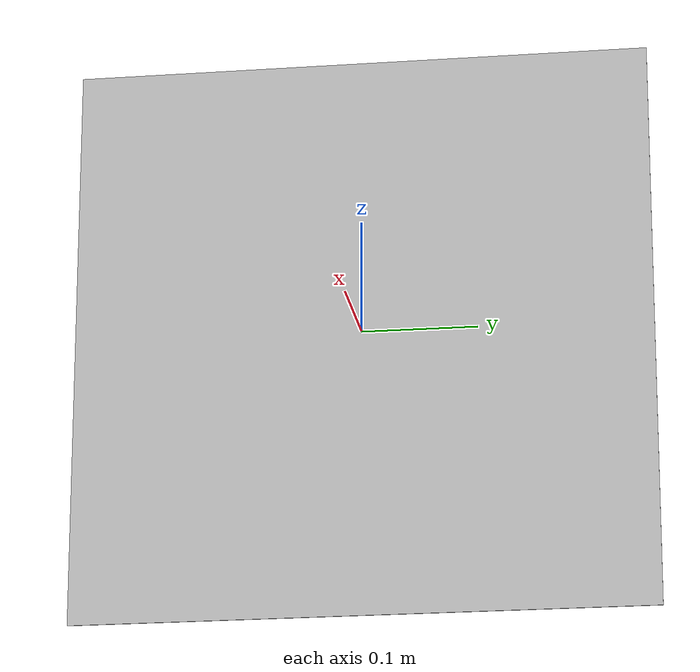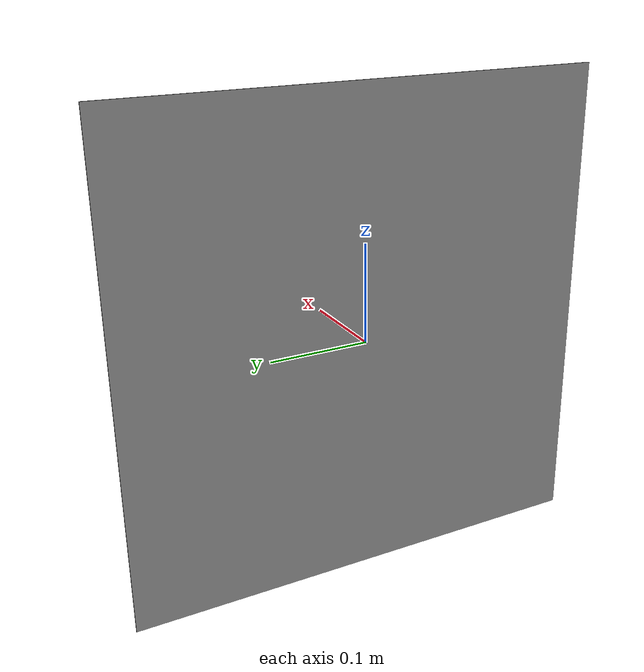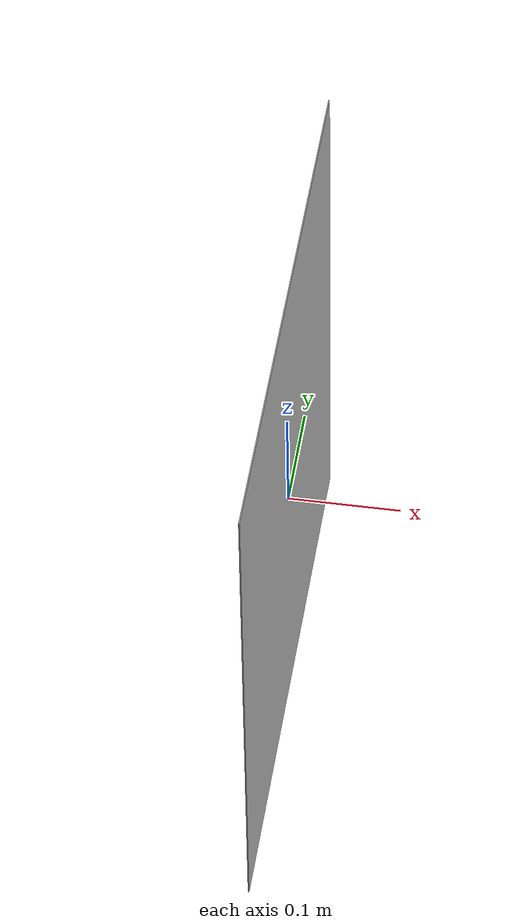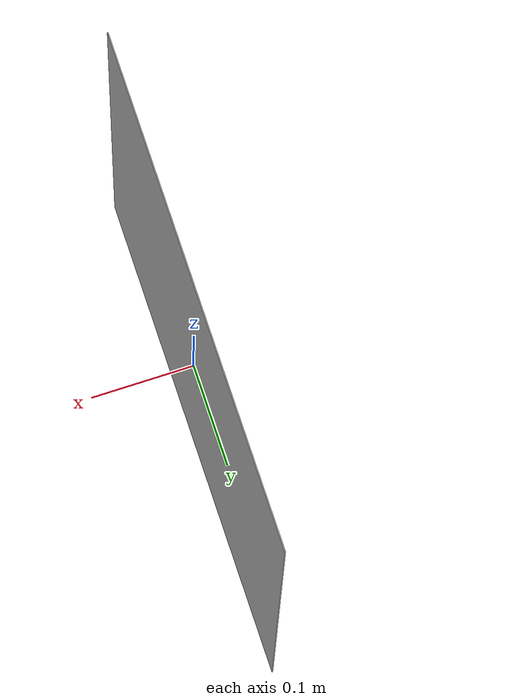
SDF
<?xml version='1.0'?>
<sdf version='1.6'>
  <model name='apriltag1'>
    <link name='link'>
      <pose frame=''>0 0 0 0 0 0</pose>
      <inertial>
        <mass>0.0001</mass>
        <inertia>
          <ixx>0.166667</ixx>
          <ixy>0</ixy>
          <ixz>0</ixz>
          <iyy>0.166667</iyy>
          <iyz>0</iyz>
          <izz>0.166667</izz>
        </inertia>
        <pose frame=''>0 0 0 0 -0 0</pose>
      </inertial>
      <self_collide>0</self_collide>
      <kinematic>0</kinematic>
      <gravity>0</gravity>
      <visual name='visual'>
        <geometry>
          <box>
            <size>0.001 0.5 0.5</size>
          </box>
        </geometry>
        <material>
          <script>
              <uri>model://apriltag1/materials/scripts/textures.material</uri>
              <uri>model://apriltag1/materials/textures/apriltag1.png</uri>
            <name>TexturedShape/Apriltag1</name>
          </script>
          <ambient>0.3 0.3 0.3 1</ambient>
          <diffuse>0.7 0.7 0.7 1</diffuse>
          <specular>0.01 0.01 0.01 1</specular>
          <emissive>0 0 0 1</emissive>
          <shader type='vertex'>
            <normal_map>__default__</normal_map>
          </shader>
        </material>
        <pose frame=''>0 0 0 0 -0 0</pose>
        <cast_shadows>1</cast_shadows>
        <transparency>0</transparency>
      </visual>
    </link>
    <static>1</static>
    <allow_auto_disable>1</allow_auto_disable>
  </model>
</sdf>
